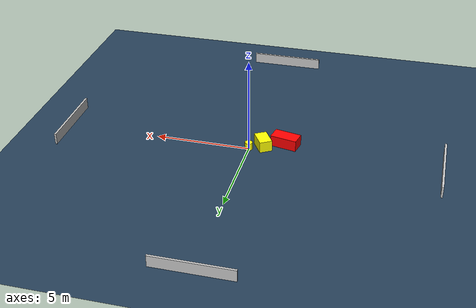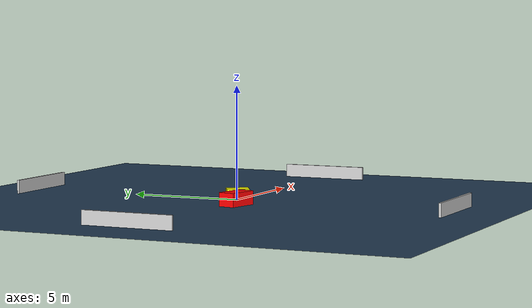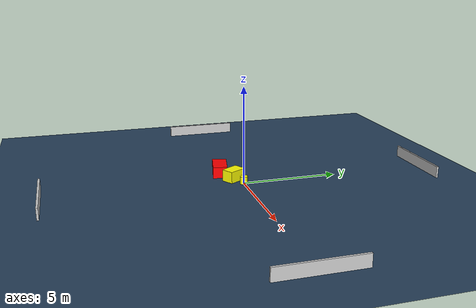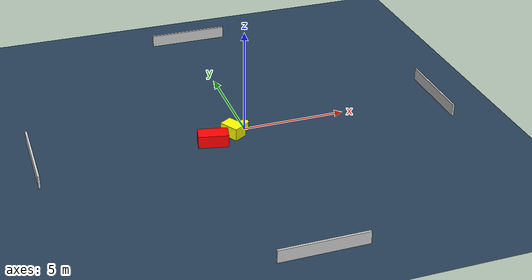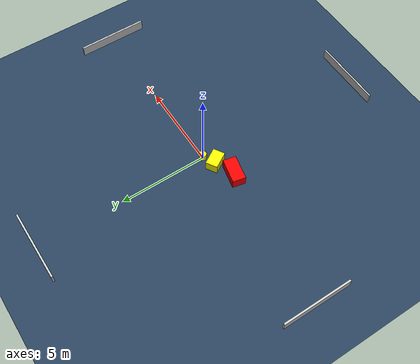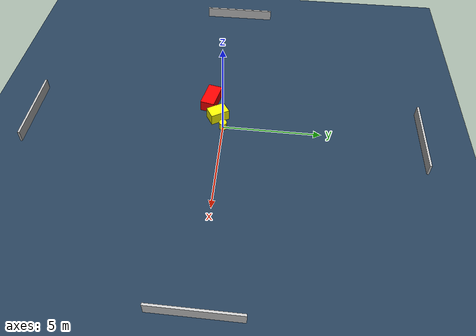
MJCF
<?xml version="1.0" ?>
<mujoco model="generated_environment">
  <option timestep="0.01" integrator="RK4" cone="elliptic"/>
  <default>
    <geom density="1"/>
  </default>
  <asset>
    <texture builtin="gradient" height="3072" name="skybox" rgb1="0.3 0.5 0.7" rgb2="0 0 0" type="skybox" width="512"/>
    <texture builtin="checker" height="300" name="groundplane" rgb1="0.2 0.3 0.4" rgb2="0.1 0.2 0.3" type="2d" width="300"/>
    <material name="groundplane" reflectance="0.2" texrepeat="5 5" texture="groundplane"/>
  </asset>
  <worldbody>
    <light dir="0 0 -1" directional="true" pos="0 0 1.5"/>
    <geom condim="3" friction="0.5 0.005 0.001" material="groundplane" name="floor" pos="0 0 0" size="0 0 0.05" type="plane"/>
    <body name="walls">
      <geom name="wall_1" condim="4" pos="-10.0 0.0 0.3" rgba="0.800000011920929 0.800000011920929 0.800000011920929 1.0" size="0.05 2.0 0.3" type="box"/>
      <geom name="wall_2" condim="4" pos="10.0 0.0 0.3" rgba="0.800000011920929 0.800000011920929 0.800000011920929 1.0" size="0.05 2.0 0.3" type="box"/>
      <geom name="wall_3" condim="4" pos="0.0 -10.0 0.3" rgba="0.800000011920929 0.800000011920929 0.800000011920929 1.0" size="2.0 0.05 0.3" type="box"/>
      <geom name="wall_4" condim="4" pos="0.0 10.0 0.3" rgba="0.800000011920929 0.800000011920929 0.800000011920929 1.0" size="2.0 0.05 0.3" type="box"/>
    </body>
    <body name="robot">
      <joint name="joint_x" type="slide" pos="0 0 0" axis="1 0 0"/>
      <joint name="joint_y" type="slide" pos="0 0 0" axis="0 1 0"/>
      <geom name="robot" type="cylinder" pos="0.0 0.0 0.2" size="0.2 0.2 0.0" mass="5.0" friction="1.0 0.005 0.0001" condim="4" rgba="1.0 1.0 0.0 1.0"/>
    </body>
    <body name="obstacle_1_movable">
      <geom name="obstacle_1_movable" condim="4" pos="-0.686876083043278 -0.34499805267062256 0.3" euler="0 0 31.086761232139178" friction="0.0 0.005 0.001" rgba="1.0 1.0 0.0 1.0" size="0.3343661099773539 0.49067548096169145 0.3" type="box" mass="0.1"/>
      <joint type="free"/>
    </body>
    <body name="obstacle_2_static">
      <geom name="obstacle_2_static" condim="4" pos="-1.8064254782614164 -0.8093609179424902 0.3" euler="0 0 258.0067725239065" friction="0.0 0.005 0.001" rgba="1.0 0.0 0.0 1.0" size="0.371273769904585 0.7115448896062777 0.3" type="box"/>
    </body>
  </worldbody>
  <actuator>
    <motor name="actuator_x" joint="joint_x" gear="1" ctrlrange="-1 1"/>
    <motor name="actuator_y" joint="joint_y" gear="1" ctrlrange="-1 1"/>
  </actuator>
</mujoco>
